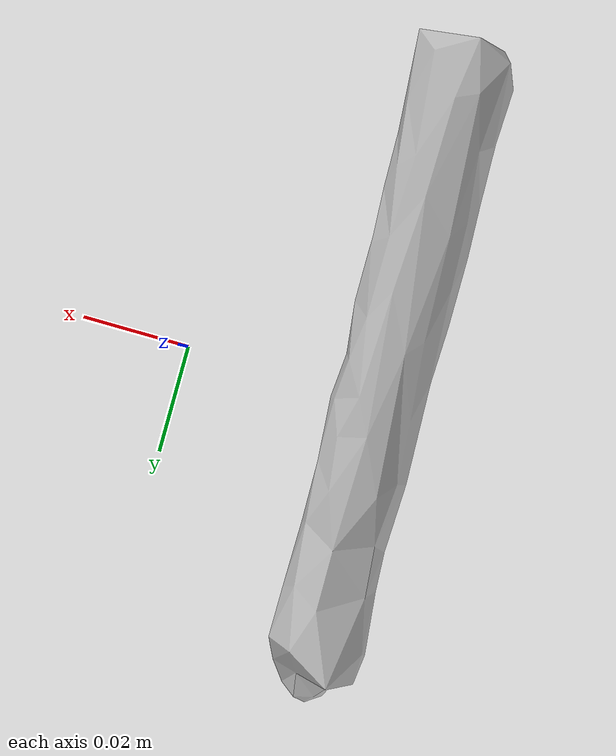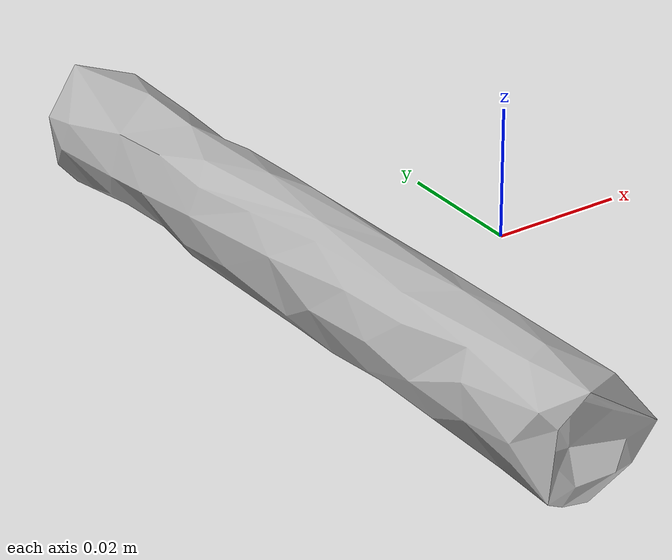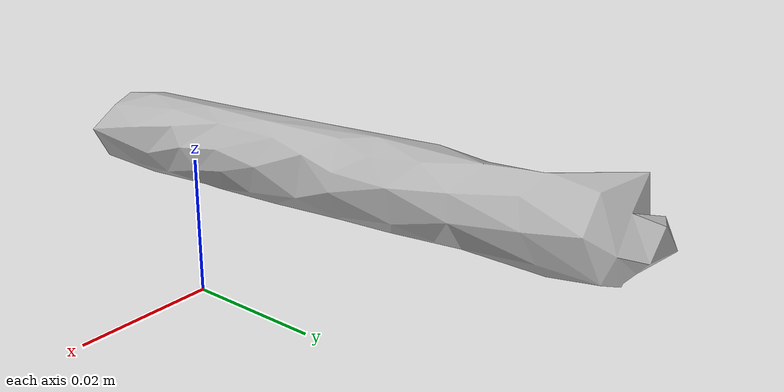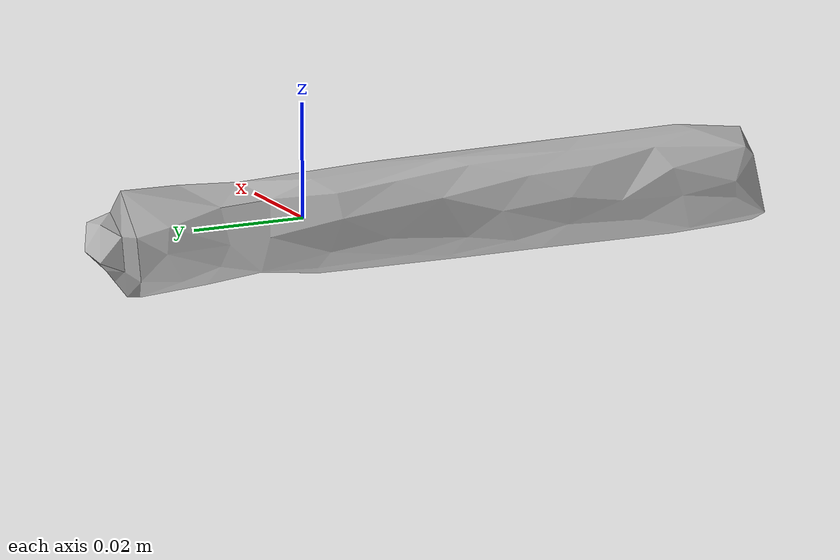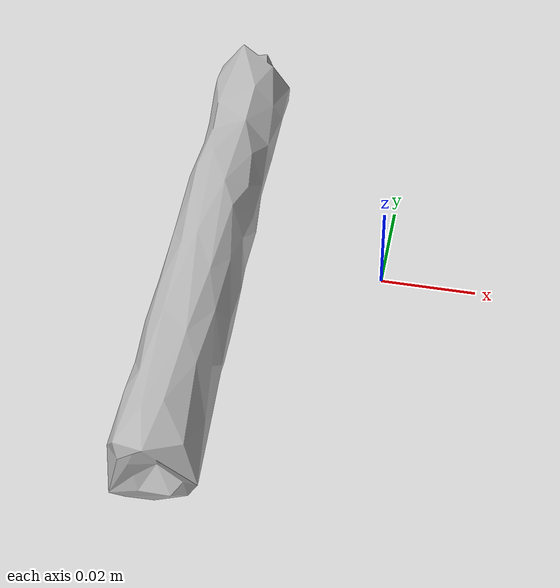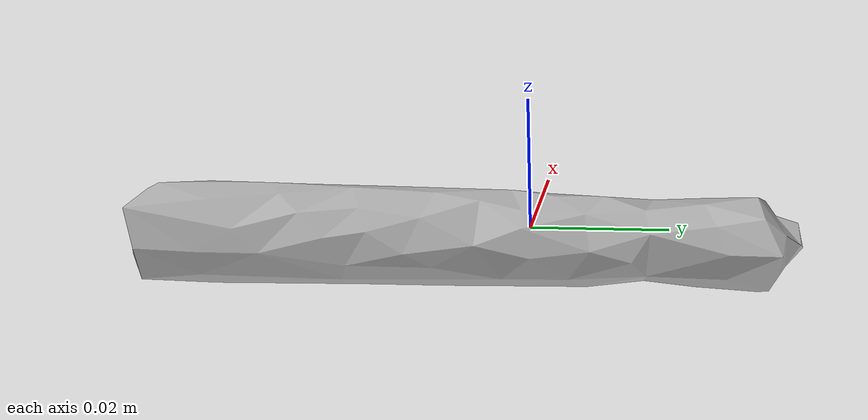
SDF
<?xml version='1.0'?>
<sdf version="1.4">
  <model name="040_large_marker">
    <static>false</static>
    <link name="link">
      <inertial>
        <pose>-0.0357443956198035 -0.006432725371718517 0.009023244684053461 -1.5716521051490457 1.2309745141154484 -3.1206595098325494</pose>
        <mass>0.003271032064138165</mass>
        <inertia>
          <ixx>3.852228537111086e-06</ixx>
          <ixy>-4.0412518073457263e-22</ixy>
          <ixz>3.052244290573703e-23</ixz>
          <iyy>3.850818564062045e-06</iyy>
          <iyz>1.9413732904641425e-23</iyz>
          <izz>1.4310335006664345e-07</izz>
        </inertia>
      </inertial>
      <collision name="collision">
        <geometry>
          <mesh>
            <!-- Use a downsampled mesh for collisions -->
            <uri>model:///040_large_marker/040_large_marker_250_collision.stl</uri>
	        </mesh>
        </geometry>
        <surface>
      </surface>
      </collision>
      <visual name="visual">
        <geometry>
          <mesh>
            <uri>model:///040_large_marker/textured.obj</uri>
	        </mesh>
        </geometry>
        <material>
          <script>
            <uri>model:///040_large_marker/040_large_marker.material</uri>
            <name>040_large_marker</name>
          </script>
        </material>
      </visual>
    </link>
  </model>
</sdf>
